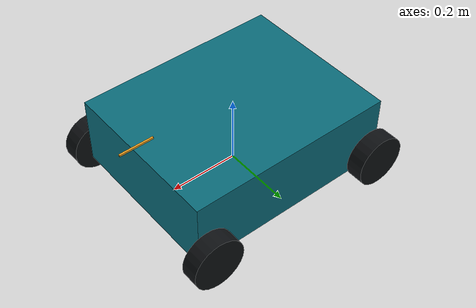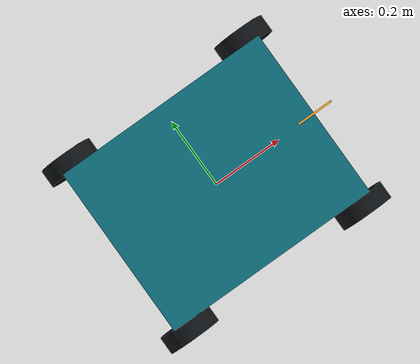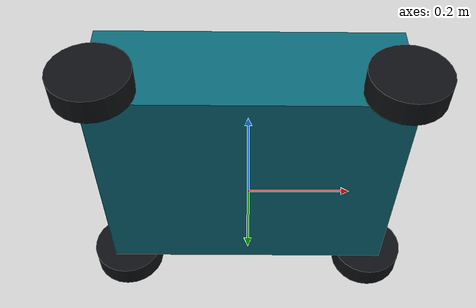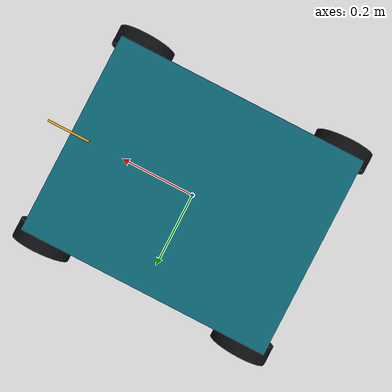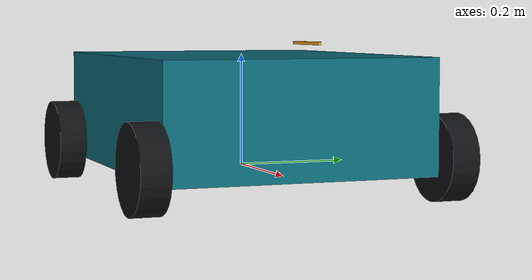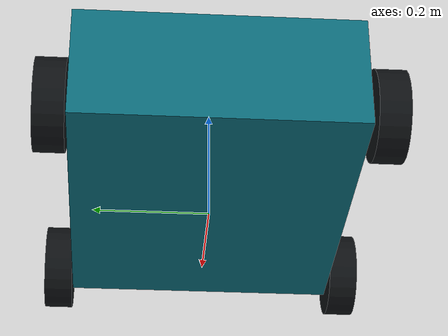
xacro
<?xml version="1.0"?>
<robot xmlns:xacro="http://www.ros.org/wiki/xacro" xmlns:ignition="http://gazebosim.org/schema" name="robocup_robot">

  <link name="base_footprint"/>

  <joint name="base_joint" type="fixed">
    <parent link="base_footprint"/>
    <child link="base_link"/>
    <origin xyz="0 0 0.1" rpy="0 0 0"/>
  </joint>

  <link name="base_link">
    <visual>
      <geometry>
        <box size="0.6 0.48 0.2"/>
      </geometry>
      <material name="body_teal"><color rgba="0.04 0.42 0.48 1"/></material>
    </visual>

    <collision>
      <geometry>
        <box size="0.6 0.48 0.2"/>
      </geometry>
    </collision>

    <inertial>
      <mass value="13.96"/>
      <origin xyz="0 0 0"/>
      <inertia
        ixx="0.315" ixy="0" ixz="0"
        iyy="0.466" iyz="0"
        izz="0.687"/>
    </inertial>
  </link>

  <xacro:macro name="wheel" params="name parent origin">
    <link name="${name}">
      <visual>
        <origin xyz="0 0 0" rpy="1.5708 0 0"/>
        <geometry>
          <cylinder radius="0.075" length="0.05"/>
        </geometry>
        <material name="wheel_rubber">
          <color rgba="0.055 0.065 0.075 1"/>
        </material>
      </visual>
      <collision>
        <origin xyz="0 0 0" rpy="1.5708 0 0"/>
        <geometry>
          <sphere radius="0.075" />
        </geometry>
      </collision>

      <inertial>
        <mass value="0.975"/>
        <origin xyz="0 0 0"/>
       <inertia
          ixx="0.001574"
          ixy="0"
          ixz="0"
          iyy="0.002742"
          iyz="0"
          izz="0.001574"/>
      </inertial>
    </link>

    <joint name="${name}_joint" type="continuous">
      <parent link="${parent}"/>
      <child link="${name}"/>
      <origin xyz="${origin}" rpy="0 0 0"/>
      <dynamics damping="0.2"/>
      <axis xyz="0 1 0"/>
    </joint>
  </xacro:macro>

  <xacro:wheel name="rear_left_wheel" parent="base_link" origin="-0.275 0.265 -0.070"/>
  <xacro:wheel name="rear_right_wheel" parent="base_link" origin="-0.275 -0.265 -0.070"/>
  <xacro:wheel name="front_left_wheel" parent="base_link" origin="0.275 0.265 -0.07"/>
  <xacro:wheel name="front_right_wheel" parent="base_link" origin="0.275 -0.265 -0.07"/>

  <joint name="sensor_joint" type="fixed">
    <parent link="base_link"/>
    <child link="sensor_link"/>
    <origin xyz="0.3 0 0.125" rpy="0.0 0.0 0.0"/>
  </joint>

  <link name="sensor_link">
    <visual >
      <origin xyz="0.0 0.0 0.0" rpy="0.0 0.0 0.0"/>
      <geometry>
        <box size="0.1 0.005 0.005"/>
      </geometry>
      <material name="white">
        <color rgba="0.96 0.64 0.12 1.0"/>
      </material>
    </visual>
    <collision>
      <origin xyz="0.0 0.0 0.0" rpy="0.0 0.0 0.0"/>
      <geometry>
        <box size="0.1 0.005 0.005"/>
      </geometry>
    </collision>
    <inertial>
      <mass value="0.1"/> <!-- Obligatorio para que Gazebo procese el sensor -->
      <origin xyz="0 0 0" rpy="0 0 0"/>
      <inertia
        ixx="0.00004" ixy="0" ixz="0"
        iyy="0.00004" iyz="0"
        izz="0.00004"/>
    </inertial>
  </link>

  <gazebo reference='sensor_link'>
    <sensor name='gpu_lidar' type='gpu_lidar'>
          <pose>0 0 0 0 0 0</pose>
          <topic>scan</topic>
           <ignition_frame_id>sensor_link</ignition_frame_id>
          <update_rate>10</update_rate>
          <lidar>
            <scan>
              <horizontal>
                <samples>640</samples>
                <resolution>1</resolution>
                <min_angle>-3.14159265</min_angle>
                <max_angle>3.14159265</max_angle>
              </horizontal>
              <vertical>
                <samples>1</samples>
                <resolution>1</resolution>
                <min_angle>0.0</min_angle>
                <max_angle>0.0</max_angle>
              </vertical>
            </scan>
            <range>
              <min>0.08</min>
              <max>10.0</max>
              <resolution>0.01</resolution>
            </range>
          </lidar>
          <visualize>true</visualize>
        </sensor>
      </gazebo>

  <!-- To emulate Mecanum wheels in Gazebo with spherical collisions it
  requires a custom friction model so the vehicle can strafe left to right -->
  <gazebo reference='front_left_wheel'>
    <collision>
      <surface>
        <friction>
          <ode>
            <mu>1</mu>
            <mu2>0</mu2>
            <fdir1 ignition:expressed_in="base_footprint">1.0 -1.0 0.0</fdir1>
          </ode>
        </friction>
      </surface>
    </collision>
  </gazebo>
  <gazebo reference='front_right_wheel'>
    <collision>
      <surface>
        <friction>
          <ode>
            <mu>1</mu>
            <mu2>0</mu2>
            <fdir1 ignition:expressed_in="base_footprint">1.0 1.0 0.0</fdir1>
          </ode>
        </friction>
      </surface>
    </collision>
  </gazebo>
  <gazebo reference='rear_left_wheel'>
    <collision>
      <surface>
        <friction>
          <ode>
            <mu>1</mu>
            <mu2>0</mu2>
            <fdir1 ignition:expressed_in="base_footprint">1.0 1.0 0.0</fdir1>
          </ode>
        </friction>
      </surface>
    </collision>
  </gazebo>
  <gazebo reference='rear_right_wheel'>
    <collision>
      <surface>
        <friction>
          <ode>
            <mu>1</mu>
            <mu2>0</mu2>
            <fdir1 ignition:expressed_in="base_footprint">1.0 -1.0 0.0</fdir1>
          </ode>
        </friction>
      </surface>
    </collision>
  </gazebo>

  <ros2_control name="GazeboSystem" type="system">
    <hardware>
      <plugin>robocup_hardware/GazeboHardware</plugin>
    </hardware>
      <joint name="front_left_wheel_joint">
        <command_interface name="velocity"/>
        <state_interface name="position"/>
        <state_interface name="velocity"/>
      </joint>
      <joint name="front_right_wheel_joint">
        <command_interface name="velocity"/>
        <state_interface name="position"/>
        <state_interface name="velocity"/>
      </joint>
      <joint name="rear_left_wheel_joint">
        <command_interface name="velocity"/>
        <state_interface name="position"/>
        <state_interface name="velocity"/>
      </joint>
      <joint name="rear_right_wheel_joint">
        <command_interface name="velocity"/>
        <state_interface name="position"/>
        <state_interface name="velocity"/>
      </joint>
  </ros2_control>

  <xacro:arg name="controllers_file" default=""/>
  <gazebo>
    <plugin
      filename="libgz_ros2_control-system.so"
      name="gz_ros2_control::GazeboSimROS2ControlPlugin">

      <parameters>$(arg controllers_file)</parameters>
      <ros>
        <remapping>/mecanum_drive_controller/reference_unstamped:=/cmd_vel</remapping>
        <remapping>/mecanum_drive_controller/odometry:=/odom</remapping>
        <remapping>/mecanum_drive_controller/tf_odometry:=/tf</remapping>
      </ros>
    </plugin>

</gazebo>

</robot>
